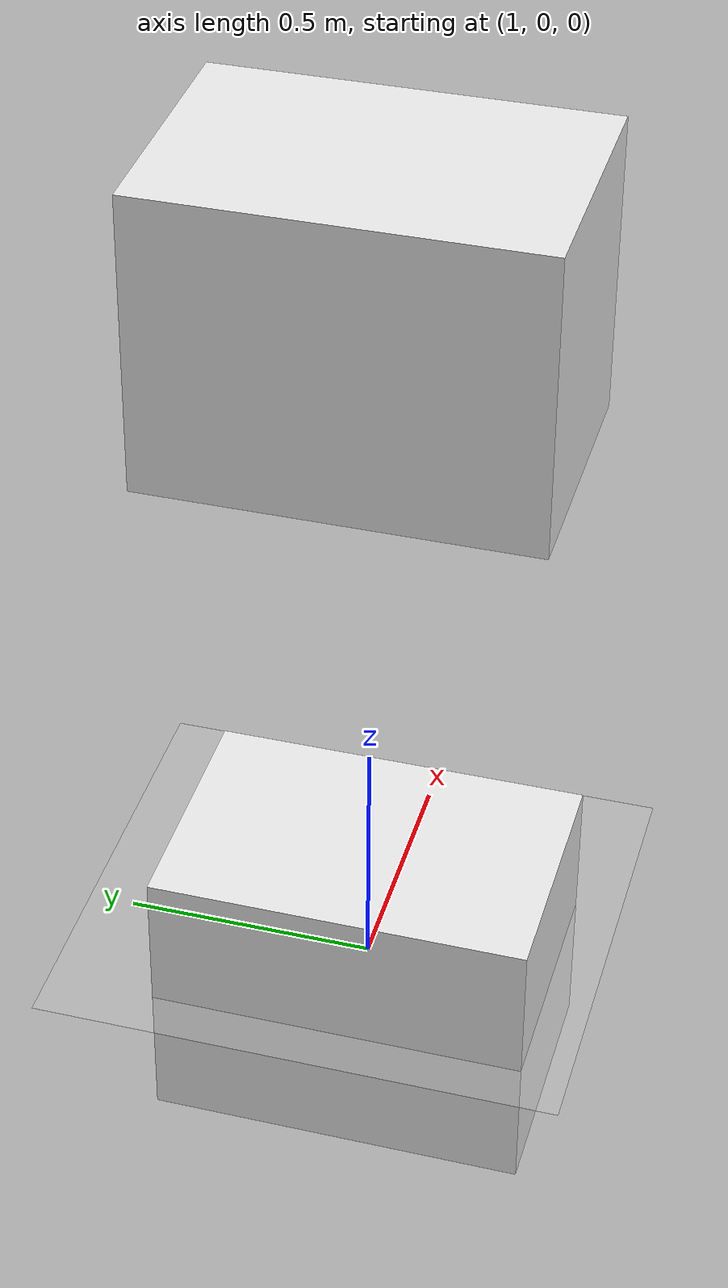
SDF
<?xml version="1.0" ?>
<sdf version="1.4">
  <!-- We use a custom world for the rrbot so that the camera angle is launched correctly -->

  <world name="default">
    <include>
      <uri>model://ground_plane</uri>
    </include>

    <!-- Global light source -->
    <include>
      <uri>model://sun</uri>
    </include>

    <physics type='ode'>
      <max_step_size>0.001</max_step_size>
      <real_time_factor>0.1</real_time_factor>
      <real_time_update_rate>1000</real_time_update_rate>
      <gravity>0 0 -9.8</gravity>
      <ode>
        <solver>
          <type>quick</type>
          <iters>50</iters>
          <sor>1.0</sor> <!-- Important, see issue #2209 -->
          <use_dynamic_moi_rescaling>false</use_dynamic_moi_rescaling>
        </solver>
      </ode>
    </physics>

    <model name="table">
      <link name="table_link">
        <inertial>
          <mass>1</mass>
          <inertia>
            <ixx>0.166667</ixx>
            <ixy>0</ixy>
            <ixz>0</ixz>
            <iyy>0.166667</iyy>
            <iyz>0</iyz>
            <izz>0.166667</izz>
          </inertia>
          <pose frame="">0 0 0 0 -0 0</pose>
        </inertial>
        <self_collide>0</self_collide>
        <enable_wind>0</enable_wind>
        <kinematic>0</kinematic>
        <pose frame=''>0 0 0 0 -0 0</pose>
        <gravity>1</gravity>
        <visual name="table_visual">
          <geometry>
            <box>
              <size>0.5 0.75 0.58</size>
            </box>
          </geometry>
          <material>
            <script>
              <name>Gazebo/White</name>
              <uri>file://media/materials/scripts/gazebo.material</uri>
            </script>
          </material>
          <pose frame="">0 0 0 0 -0 0</pose>
          <transparency>0</transparency>
          <cast_shadows>1</cast_shadows>
        </visual>
        <collision name="table_collision">
          <laser_retro>0</laser_retro>
          <max_contacts>10</max_contacts>
          <pose frame="">0 0 0 0 -0 0</pose>
          <geometry>
            <box>
              <size>0.5 0.75 0.58</size>
            </box>
          </geometry>
          <surface>
            <friction>
              <ode>
                <mu>1</mu>
                <mu2>1</mu2>
                <fdir1>0 0 0</fdir1>
                <slip1>0</slip1>
                <slip2>0</slip2>
              </ode>
              <torsional>
                <coefficient>1</coefficient>
                <patch_radius>0</patch_radius>
                <surface_radius>0</surface_radius>
                <use_patch_radius>1</use_patch_radius>
                <ode>
                  <slip>0</slip>
                </ode>
              </torsional>
            </friction>
            <bounce>
              <restitution_coefficient>0</restitution_coefficient>
              <threshold>1e+06</threshold>
            </bounce>
            <contact>
              <collide_without_contact>0</collide_without_contact>
              <collide_without_contact_bitmask>1</collide_without_contact_bitmask>
              <collide_bitmask>1</collide_bitmask>
              <ode>
                <soft_cfm>0</soft_cfm>
                <soft_erp>0.2</soft_erp>
                <kp>1e+13</kp>
                <kd>1</kd>
                <max_vel>0.01</max_vel>
                <min_depth>0</min_depth>
              </ode>
              <bullet>
                <split_impulse>1</split_impulse>
                <split_impulse_penetration_threshold>-0.01</split_impulse_penetration_threshold>
                <soft_cfm>0</soft_cfm>
                <soft_erp>0.2</soft_erp>
                <kp>1e+13</kp>
                <kd>1</kd>
              </bullet>
            </contact>
          </surface>
        </collision>
      </link>
      <static>0</static>
      <allow_auto_disable>1</allow_auto_disable>
      <pose frame="">1 0 0 0 0 0</pose>
    </model>

    <model name="table_1">
      <link name="table_link_1">
        <inertial>
          <mass>1</mass>
          <inertia>
            <ixx>0.166667</ixx>
            <ixy>0</ixy>
            <ixz>0</ixz>
            <iyy>0.166667</iyy>
            <iyz>0</iyz>
            <izz>0.166667</izz>
          </inertia>
          <pose frame="">0 0 0 0 -0 0</pose>
        </inertial>
        <self_collide>0</self_collide>
        <enable_wind>0</enable_wind>
        <kinematic>0</kinematic>
        <pose frame=''>0 0 0 0 -0 0</pose>
        <gravity>1</gravity>
        <visual name="table_visual_1">
          <geometry>
            <box>
              <size>0.5 0.75 0.58</size>
            </box>
          </geometry>
          <material>
            <script>
              <name>Gazebo/White</name>
              <uri>file://media/materials/scripts/gazebo.material</uri>
            </script>
          </material>
          <pose frame="">0 0 0 0 -0 0</pose>
          <transparency>0</transparency>
          <cast_shadows>1</cast_shadows>
        </visual>
        <collision name="table_collision_1">
          <laser_retro>0</laser_retro>
          <max_contacts>10</max_contacts>
          <pose frame="">0 0 0 0 -0 0</pose>
          <geometry>
            <box>
              <size>0.5 0.75 0.58</size>
            </box>
          </geometry>
          <surface>
            <friction>
              <ode>
                <mu>1</mu>
                <mu2>1</mu2>
                <fdir1>0 0 0</fdir1>
                <slip1>0</slip1>
                <slip2>0</slip2>
              </ode>
              <torsional>
                <coefficient>1</coefficient>
                <patch_radius>0</patch_radius>
                <surface_radius>0</surface_radius>
                <use_patch_radius>1</use_patch_radius>
                <ode>
                  <slip>0</slip>
                </ode>
              </torsional>
            </friction>
            <bounce>
              <restitution_coefficient>0</restitution_coefficient>
              <threshold>1e+06</threshold>
            </bounce>
            <contact>
              <collide_without_contact>0</collide_without_contact>
              <collide_without_contact_bitmask>1</collide_without_contact_bitmask>
              <collide_bitmask>1</collide_bitmask>
              <ode>
                <soft_cfm>0</soft_cfm>
                <soft_erp>0.2</soft_erp>
                <kp>1e+13</kp>
                <kd>1</kd>
                <max_vel>0.01</max_vel>
                <min_depth>0</min_depth>
              </ode>
              <bullet>
                <split_impulse>1</split_impulse>
                <split_impulse_penetration_threshold>-0.01</split_impulse_penetration_threshold>
                <soft_cfm>0</soft_cfm>
                <soft_erp>0.2</soft_erp>
                <kp>1e+13</kp>
                <kd>1</kd>
              </bullet>
            </contact>
          </surface>
        </collision>
      </link>
      <static>0</static>
      <allow_auto_disable>1</allow_auto_disable>
      <pose frame="">1 0 1.5 0 0 0</pose>
    </model>

    <!-- Focus camera on tall pendulum -->
    <gui fullscreen='0'>
      <camera name='user_camera'>
        <pose>4.927360 -4.376610 3.740080 0.000000 0.275643 2.356190</pose>
        <view_controller>orbit</view_controller>
      </camera>
    </gui>

  </world>
</sdf>
